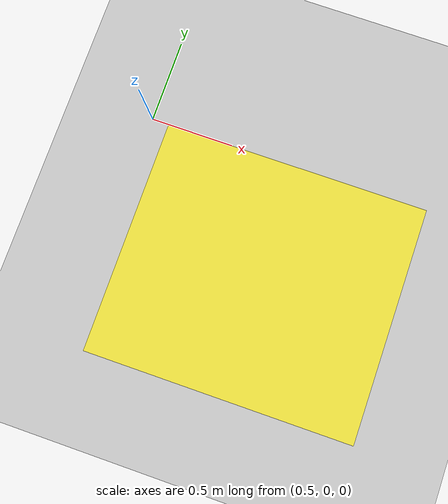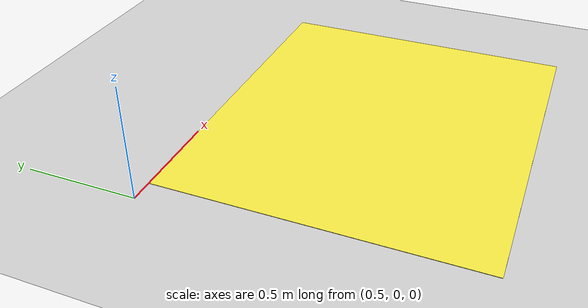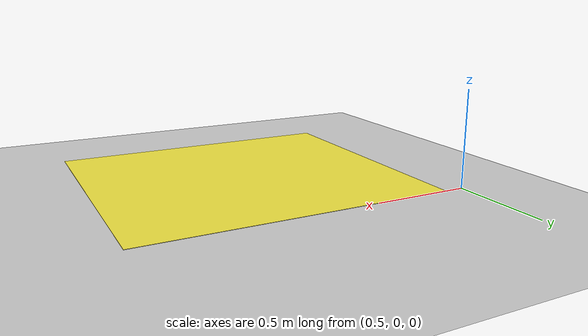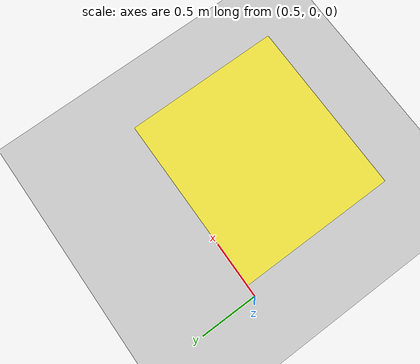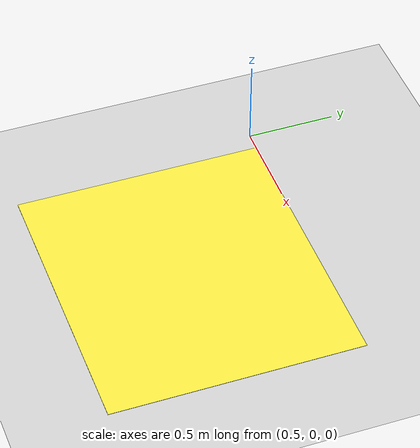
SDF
<?xml version="1.0" ?>
<sdf version="1.6">
  <world name="airport_loading">
    <include>
      <uri>model://sun</uri>
    </include>
    <include>
      <uri>model://ground_plane</uri>
    </include>

    <scene>
      <ambient>0.55 0.55 0.60 1</ambient>
      <background>0.65 0.70 0.75 1</background>
      <shadows>true</shadows>
    </scene>

    <!-- Loading zone floor marking (visual aid) -->
    <model name="loading_zone_marking">
      <static>true</static>
      <link name="link">
        <visual name="zone_visual">
          <pose>1.4 -0.7 0.001 0 0 0</pose>
          <geometry><box><size>1.6 1.4 0.002</size></box></geometry>
          <material>
            <ambient>0.9 0.85 0.2 1</ambient>
            <diffuse>0.95 0.90 0.25 1</diffuse>
          </material>
        </visual>
      </link>
    </model>
  </world>
</sdf>
